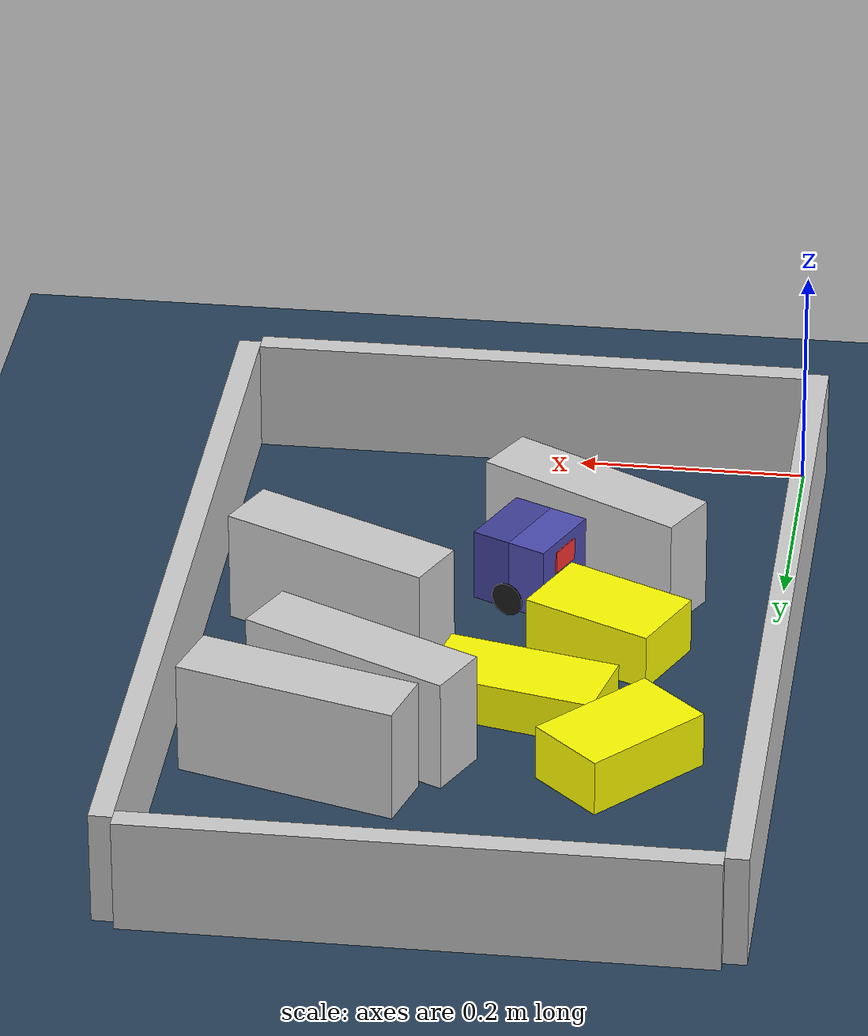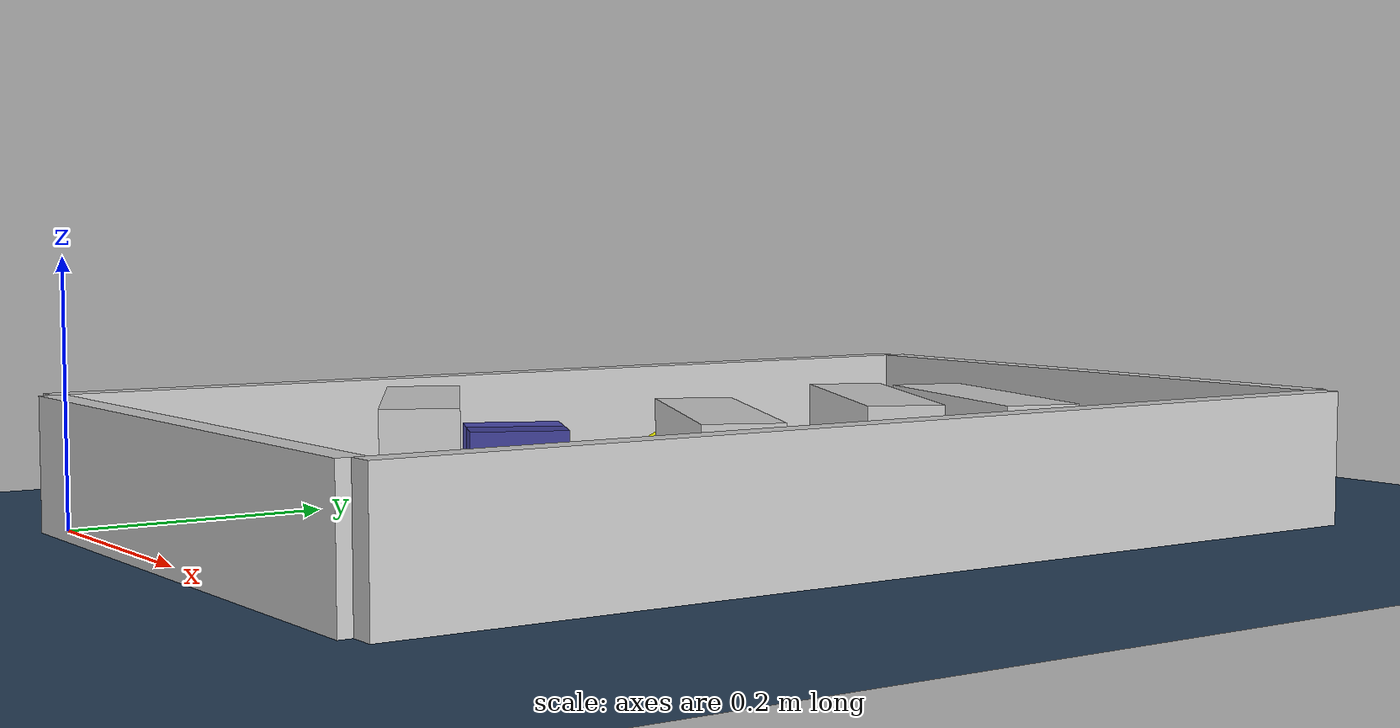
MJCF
<?xml version='1.0' encoding='utf-8'?>
<mujoco model="real_buildable">
  <compiler angle="degree" />
  <option timestep="0.002" integrator="implicitfast" iterations="100" cone="elliptic" />
  <default>
    <geom density="1" />
  </default>
  <asset>
    <texture builtin="gradient" height="3072" rgb1="0.3 0.5 0.7" rgb2="0 0 0" type="skybox" width="512" />
    <texture builtin="checker" height="300" mark="edge" markrgb="0.8 0.8 0.8" name="groundplane" rgb1="0.2 0.3 0.4" rgb2="0.1 0.2 0.3" type="2d" width="300" />
    <material name="groundplane" reflectance="0.2" texrepeat="5 5" texture="groundplane" texuniform="true" />
  </asset>
  <worldbody>
    <light dir="0 0 -1" directional="true" pos="0 0 1.5" />
    <geom name="floor" type="plane" condim="4" friction="0.5 0.005 0.001" material="groundplane" size="0 0 0.05" />
    <body name="walls">
      <geom name="wall_boundary_left" type="box" condim="4" friction="1.0 0.005 0.0001" rgba="0.8 0.8 0.8 1" pos="-0.010000 0.387500 0.050000" euler="0 0 0.000000" size="0.010000 0.397500 0.050000" />
      <geom name="wall_boundary_right" type="box" condim="4" friction="1.0 0.005 0.0001" rgba="0.8 0.8 0.8 1" pos="0.500000 0.387500 0.050000" euler="0 0 0.000000" size="0.010000 0.397500 0.050000" />
      <geom name="wall_boundary_bottom" type="box" condim="4" friction="1.0 0.005 0.0001" rgba="0.8 0.8 0.8 1" pos="0.245000 -0.010000 0.050000" euler="0 0 0.000000" size="0.245000 0.010000 0.050000" />
      <geom name="wall_boundary_top" type="box" condim="4" friction="1.0 0.005 0.0001" rgba="0.8 0.8 0.8 1" pos="0.245000 0.785000 0.050000" euler="0 0 0.000000" size="0.245000 0.010000 0.050000" />
      <geom name="wall_inner_1" type="box" condim="4" friction="1.0 0.005 0.0001" rgba="0.8 0.8 0.8 1" pos="0.165000 0.204000 0.050000" euler="0 0 151.300000" size="0.097500 0.027500 0.050000" />
      <geom name="wall_inner_2" type="box" condim="4" friction="1.0 0.005 0.0001" rgba="0.8 0.8 0.8 1" pos="0.372000 0.318000 0.050000" euler="0 0 154.700000" size="0.097500 0.027500 0.050000" />
      <geom name="wall_inner_3" type="box" condim="4" friction="1.0 0.005 0.0001" rgba="0.8 0.8 0.8 1" pos="0.331370 0.487484 0.050000" euler="0 0 153.905386" size="0.097500 0.027500 0.050000" />
      <geom name="wall_inner_4" type="box" condim="4" friction="1.0 0.005 0.0001" rgba="0.8 0.8 0.8 1" pos="0.375632 0.552384 0.050000" euler="0 0 163.808530" size="0.097500 0.027500 0.050000" />
    </body>
    <body name="car" pos="0.21695078525578723 0.2515763385389842 0.01" quat="0.21421810702028868 0 0 0.97678585300189735">
      <freejoint name="car_freejoint" />
      <inertial pos="0 0 0.0375" mass="0.35" diaginertia="0.000266 0.000266 0.000286" />
      <geom name="front_chassis_collision" type="box" pos="0.0175 0 0.0375" size="0.0175 0.035 0.0325" rgba="0.3 0.3 0.7 1" />
      <geom name="rear_chassis_collision" type="box" pos="-0.0175 0 0.0375" size="0.0175 0.035 0.0325" rgba="0.25 0.25 0.6 1" />
      <geom name="front_marker" type="box" pos="0.034 0 0.0505" size="0.002 0.015 0.01" rgba="1 0.2 0.2 1" contype="0" conaffinity="0" />
      <body name="rear_support_body" pos="-0.03 0 0.0025">
        <joint name="rear_caster_joint" type="ball" damping="0.0001" />
        <inertial pos="0 0 0" mass="0.025" diaginertia="0.000001 0.000001 0.000001" />
        <geom name="rear_support" type="sphere" pos="0 0 0" size="0.0025" friction="0 0 0" rgba="0.7 0.1 0.1 1" />
      </body>
      <body name="front_support_body" pos="0.03 0 0.0025">
        <joint name="front_caster_joint" type="ball" damping="0.0001" />
        <inertial pos="0 0 0" mass="0.025" diaginertia="0.000001 0.000001 0.000001" />
        <geom name="front_support" type="sphere" pos="0 0 0" size="0.0025" friction="0 0 0" rgba="0.1 0.7 0.1 1" />
      </body>
      <body name="left_wheel" pos="0 0.0375 0.015">
        <inertial pos="0 0 0" mass="0.05" diaginertia="0.000003 0.000006 0.000003" />
        <joint name="left_wheel_joint" type="hinge" axis="0 1 0" damping="0.01" armature="0.0001" />
        <geom name="left_wheel_collision" type="cylinder" size="0.015 0.0005" euler="90 0 0" rgba="0.1 0.1 0.1 1" />
      </body>
      <body name="right_wheel" pos="0 -0.0375 0.015">
        <inertial pos="0 0 0" mass="0.05" diaginertia="0.000003 0.000006 0.000003" />
        <joint name="right_wheel_joint" type="hinge" axis="0 1 0" damping="0.01" armature="0.0001" />
        <geom name="right_wheel_collision" type="cylinder" size="0.015 0.0005" euler="90 0 0" rgba="0.1 0.1 0.1 1" />
      </body>
    </body>
    <body name="obstacle_0_movable">
      <geom name="obstacle_0_movable" condim="4" pos="0.14143772896459825 0.31770041758371304 0.025000000000000001" friction="1 0.005 0.0001" rgba="1 1 0 1" size="0.037500 0.060000 0.025000" type="box" mass="0.1" quat="0.84454646345547768 0 0 0.53548227894566736" />
      <joint type="free" />
    </body>
    <body name="obstacle_1_movable">
      <geom name="obstacle_1_movable" condim="4" pos="0.11146800000000026 0.50999999999999912 0.025000000000000001" friction="1 0.005 0.0001" rgba="1 1 0 1" size="0.037500 0.060000 0.025000" type="box" mass="0.1" quat="0.3665237904985672 0 0 0.93040867955891426" />
      <joint type="free" />
    </body>
    <body name="obstacle_2_movable">
      <geom name="obstacle_2_movable" condim="4" pos="0.20414199999999993 0.42357099999999959 0.02" friction="1 0.005 0.0001" rgba="1 1 0 1" size="0.035000 0.075000 0.020000" type="box" mass="0.1" quat="0.78242411964488379 0 0 0.62274593294370739" />
      <joint type="free" />
    </body>
    <site name="goal" type="sphere" pos="0.080000 0.660000 0.0" size="0.02" rgba="1 0 0 0.5" />
  </worldbody>
  <actuator>
    <velocity name="left_wheel_drive" joint="left_wheel_joint" ctrlrange="-25 25" kv="0.75" forcerange="-0.5 0.5" />
    <velocity name="right_wheel_drive" joint="right_wheel_joint" ctrlrange="-25 25" kv="0.75" forcerange="-0.5 0.5" />
  </actuator>
</mujoco>
